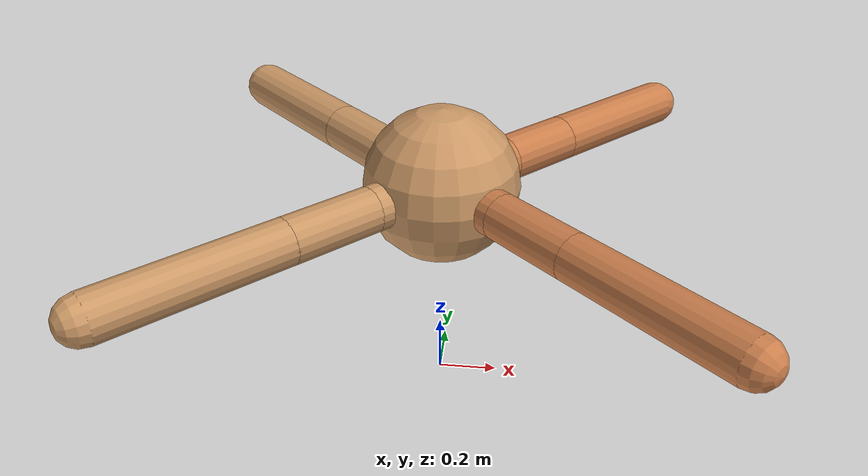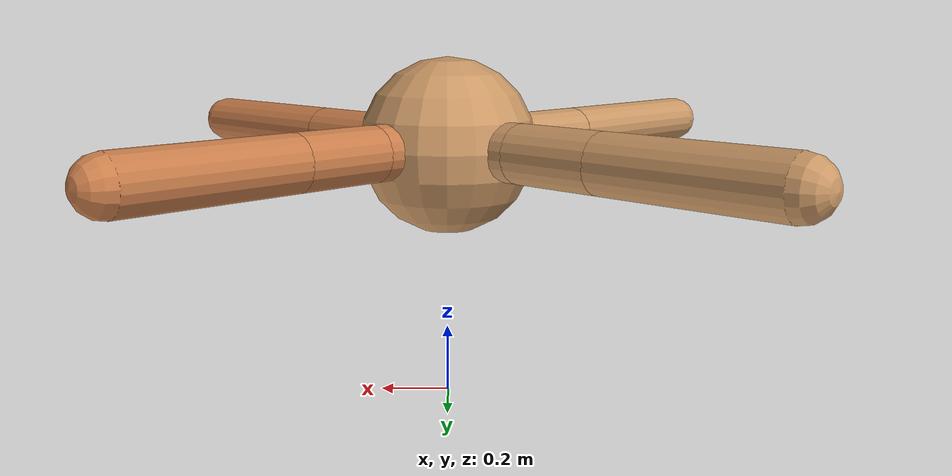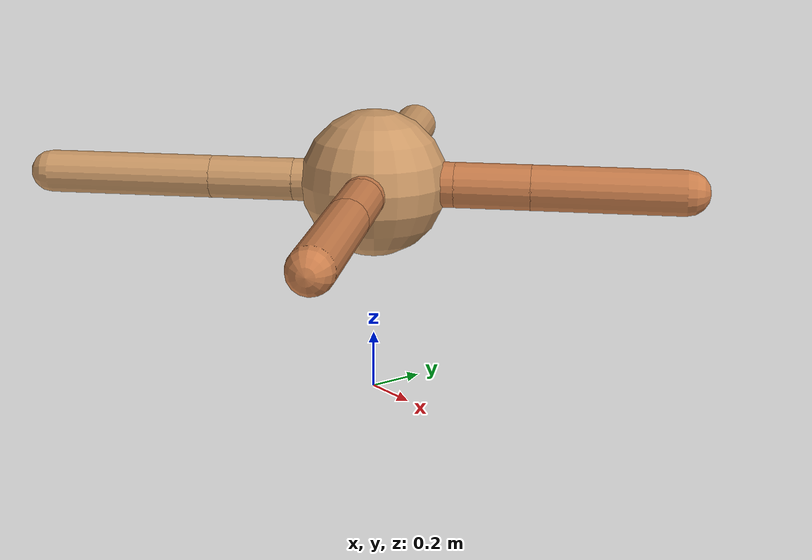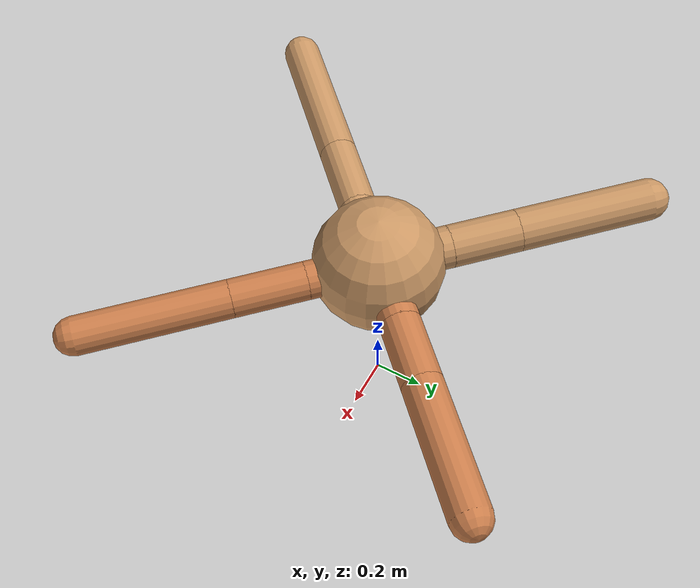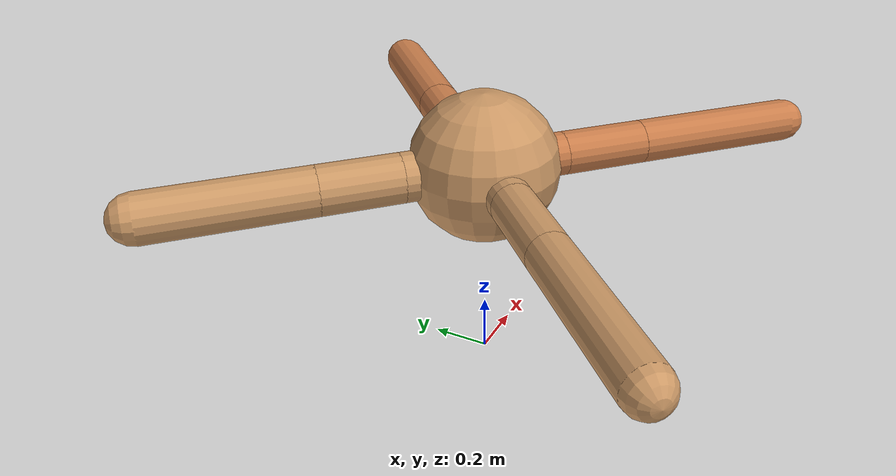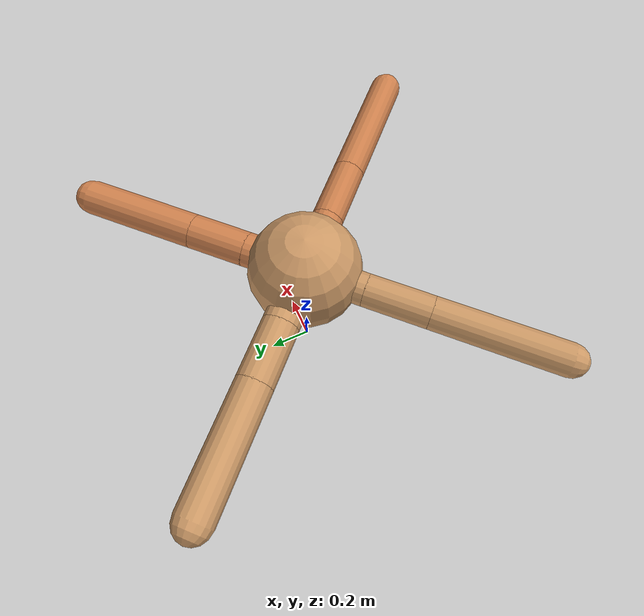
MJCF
<?xml version="1.0" ?>
<mujoco model="ant">

	<compiler angle="degree" coordinate="local" inertiafromgeom="true"/>

	<option integrator="RK4" timestep="0.01"/>

	<custom>

		<numeric data="0.0 0.0 0.55 1.0 0.0 0.0 0.0 0.0 1.0 0.0 -1.0 0.0 -1.0 0.0 1.0" name="init_qpos"/>

	</custom>

	<default>

		<joint armature="1" damping="1" limited="true"/>

		<geom conaffinity="0" condim="3" density="5.0" friction="1.5 0.1 0.1" margin="0.01" rgba="0.8 0.6 0.4 1"/>

	</default>

	<worldbody>

		<body name="torso" pos="0 0 0.75">

			<geom name="torso_geom" pos="0 0 0" size="0.25765945695500825" type="sphere"/>

			<!--joint armature="0" damping="0" limited="false" margin="0.01" name="root" pos="0 0 0" type="free"/-->

			<body name="front_left_leg" pos="0 0 0">

				<geom fromto="0 0 0 0.2 0.2 0" name="aux_1_geom" size="0.07952281778701742" type="capsule" rgba=".8 .5 .3 1"/>

				<body name="aux_1" pos="0.2 0.2 0">

					<joint axis="0 0 1" name="hip_1" pos="0.0 0.0 0.0" range="-40 40" type="hinge"/>

					<geom fromto="0 0 0 0.18649873552789772 0.18649873552789772 0" name="left_leg_geom" size="0.07952281778701742" type="capsule" rgba=".8 .5 .3 1"/>

					<body pos="0.18649873552789772 0.18649873552789772 0" name="front_left_foot">

						<joint axis="-1 1 0" name="ankle_1" pos="0.0 0.0 0.0" range="30 100" type="hinge"/>

						<geom fromto="0 0 0 0.37299747105579545 0.37299747105579545 0" name="left_ankle_geom" size="0.07952281778701742" type="capsule" rgba=".8 .5 .3 1"/>

					</body>

				</body>

			</body>

			<body name="front_right_leg" pos="0 0 0">

				<geom fromto="0 0 0 -0.2 0.2 0" name="aux_2_geom" size="0.08413658620751971" type="capsule"/>

				<body name="aux_2" pos="-0.2 0.2 0">

					<joint axis="0 0 1" name="hip_2" pos="0.0 0.0 0.0" range="-40 40" type="hinge"/>

					<geom fromto="0 0 0 -0.1943617193116397 0.1943617193116397 0" name="right_leg_geom" size="0.08413658620751971" type="capsule"/>

					<body pos="-0.1943617193116397 0.1943617193116397 0" name="front_right_foot">

						<joint axis="1 1 0" name="ankle_2" pos="0.0 0.0 0.0" range="-100 -30" type="hinge"/>

						<geom fromto="0 0 0 -0.3887234386232794 0.3887234386232794 0" name="right_ankle_geom" size="0.08413658620751971" type="capsule"/>

					</body>

				</body>

			</body>

			<body name="left_back_leg" pos="0 0 0">

				<geom fromto="0 0 0 -0.2 -0.2 0" name="aux_3_geom" size="0.07501789575491731" type="capsule"/>

				<body name="aux_3" pos="-0.2 -0.2 0">

					<joint axis="0 0 1" name="hip_3" pos="0.0 0.0 0.0" range="-40 40" type="hinge"/>

					<geom fromto="0 0 0 -0.2094401817711692 -0.2094401817711692 0" name="back_leg_geom" size="0.07501789575491731" type="capsule"/>

					<body pos="-0.2094401817711692 -0.2094401817711692 0" name="left_back_foot">

						<joint axis="-1 1 0" name="ankle_3" pos="0.0 0.0 0.0" range="-100 -30" type="hinge"/>

						<geom fromto="0 0 0 -0.4188803635423384 -0.4188803635423384 0" name="third_ankle_geom" size="0.07501789575491731" type="capsule"/>

					</body>

				</body>

			</body>

			<body name="right_back_leg" pos="0 0 0">

				<geom fromto="0 0 0 0.2 -0.2 0" name="aux_4_geom" size="0.07484039930842554" type="capsule" rgba=".8 .5 .3 1"/>

				<body name="aux_4" pos="0.2 -0.2 0">

					<joint axis="0 0 1" name="hip_4" pos="0.0 0.0 0.0" range="-40 40" type="hinge"/>

					<geom fromto="0 0 0 0.2055407030853995 -0.2055407030853995 0" name="rightback_leg_geom" size="0.07484039930842554" type="capsule" rgba=".8 .5 .3 1"/>

					<body pos="0.2055407030853995 -0.2055407030853995 0" name="right_back_foot">

						<joint axis="1 1 0" name="ankle_4" pos="0.0 0.0 0.0" range="30 100" type="hinge"/>

						<geom fromto="0 0 0 0.411081406170799 -0.411081406170799 0" name="fourth_ankle_geom" size="0.07484039930842554" type="capsule" rgba=".8 .5 .3 1"/>

					</body>

				</body>

			</body>

		</body>

	</worldbody>

	<actuator>

		<motor ctrllimited="true" ctrlrange="-1.0 1.0" joint="hip_4" gear="150"/>

		<motor ctrllimited="true" ctrlrange="-1.0 1.0" joint="ankle_4" gear="150"/>

		<motor ctrllimited="true" ctrlrange="-1.0 1.0" joint="hip_1" gear="150"/>

		<motor ctrllimited="true" ctrlrange="-1.0 1.0" joint="ankle_1" gear="150"/>

		<motor ctrllimited="true" ctrlrange="-1.0 1.0" joint="hip_2" gear="150"/>

		<motor ctrllimited="true" ctrlrange="-1.0 1.0" joint="ankle_2" gear="150"/>

		<motor ctrllimited="true" ctrlrange="-1.0 1.0" joint="hip_3" gear="150"/>

		<motor ctrllimited="true" ctrlrange="-1.0 1.0" joint="ankle_3" gear="150"/>

	</actuator>

</mujoco>
